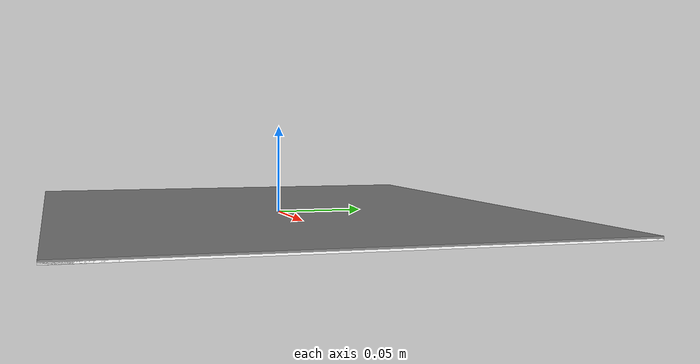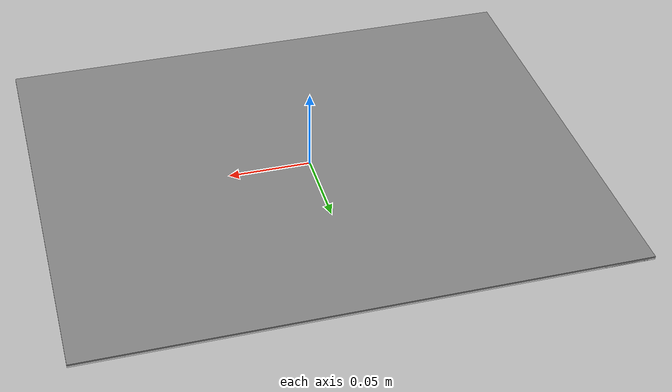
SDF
<?xml version='1.0'?>
<sdf version='1.5'>
    <model name='calibration'>

        <static>1</static>
        <allow_auto_disable>1</allow_auto_disable>

        <link name="base_link">
            <!-- Back of the landmark not to mess with small Z offset -->
            <visual name="back">
                <pose>0 0 0.0015 0 0 0</pose>
                <geometry>
                    <box>
                        <size>0.33 0.27 0.001</size>
                    </box>
                </geometry>
                <material>
                    <ambient>0.5 0.5 0.5 1</ambient>
                    <specular>0.5 0.5 0.5 1</specular>
                    <diffuse>0.5 0.5 0.5 1</diffuse>
                </material>
            </visual>
            <inertial>
                <mass>0.1</mass>
            </inertial>
            <!-- Borders -->
            <visual name="border0">
                <pose>0.15 0 0.0005 0 0 0</pose>
                <geometry>
                    <box>
                        <size>0.03 0.27 0.001</size>
                    </box>
                </geometry>
                <material>
                    <ambient>1 1 1 1</ambient>
                    <specular>1 1 1 1</specular>
                    <diffuse>1 1 1 1</diffuse>
                </material>
            </visual>
            <visual name="border1">
                <pose>-0.15 0 0.0005 0 0 0</pose>
                <geometry>
                    <box>
                        <size>0.03 0.27 0.001</size>
                    </box>
                </geometry>
                <material>
                    <ambient>1 1 1 1</ambient>
                    <specular>1 1 1 1</specular>
                    <diffuse>1 1 1 1</diffuse>
                </material>
            </visual>
            <visual name="border2">
                <pose>0 0.12 0.0005 0 0 0</pose>
                <geometry>
                    <box>
                        <size>0.33 0.03 0.001</size>
                    </box>
                </geometry>
                <material>
                    <ambient>1 1 1 1</ambient>
                    <specular>1 1 1 1</specular>
                    <diffuse>1 1 1 1</diffuse>
                </material>
            </visual>
            <visual name="border3">
                <pose>0 -0.12 0.0005 0 0 0</pose>
                <geometry>
                    <box>
                        <size>0.33 0.03 0.001</size>
                    </box>
                </geometry>
                <material>
                    <ambient>1 1 1 1</ambient>
                    <specular>1 1 1 1</specular>
                    <diffuse>1 1 1 1</diffuse>
                </material>
            </visual>
            <visual name="86">
                <pose>0.12 0.09 0.0005 0 0 0</pose>
                <geometry>
                    <box>
                        <size>0.03 0.03 0.001</size>
                    </box>
                </geometry>
                <material>
                    <ambient>1 1 1 1</ambient>
                    <specular>1 1 1 1</specular>
                    <diffuse>1 1 1 1</diffuse>
                </material>
            </visual>
            <visual name="85">
                <pose>0.12 0.06 0.0005 0 0 0</pose>
                <geometry>
                    <box>
                        <size>0.03 0.03 0.001</size>
                    </box>
                </geometry>
                <material>
                    <ambient>0 0 0 1</ambient>
                    <specular>0 0 0 1</specular>
                    <diffuse>0 0 0 1</diffuse>
                </material>
            </visual>
            <visual name="84">
                <pose>0.12 0.03 0.0005 0 0 0</pose>
                <geometry>
                    <box>
                        <size>0.03 0.03 0.001</size>
                    </box>
                </geometry>
                <material>
                    <ambient>1 1 1 1</ambient>
                    <specular>1 1 1 1</specular>
                    <diffuse>1 1 1 1</diffuse>
                </material>
            </visual>
            <visual name="83">
                <pose>0.12 0.0 0.0005 0 0 0</pose>
                <geometry>
                    <box>
                        <size>0.03 0.03 0.001</size>
                    </box>
                </geometry>
                <material>
                    <ambient>0 0 0 1</ambient>
                    <specular>0 0 0 1</specular>
                    <diffuse>0 0 0 1</diffuse>
                </material>
            </visual>
            <visual name="82">
                <pose>0.12 -0.03 0.0005 0 0 0</pose>
                <geometry>
                    <box>
                        <size>0.03 0.03 0.001</size>
                    </box>
                </geometry>
                <material>
                    <ambient>1 1 1 1</ambient>
                    <specular>1 1 1 1</specular>
                    <diffuse>1 1 1 1</diffuse>
                </material>
            </visual>
            <visual name="81">
                <pose>0.12 -0.06 0.0005 0 0 0</pose>
                <geometry>
                    <box>
                        <size>0.03 0.03 0.001</size>
                    </box>
                </geometry>
                <material>
                    <ambient>0 0 0 1</ambient>
                    <specular>0 0 0 1</specular>
                    <diffuse>0 0 0 1</diffuse>
                </material>
            </visual>
            <visual name="80">
                <pose>0.12 -0.09 0.0005 0 0 0</pose>
                <geometry>
                    <box>
                        <size>0.03 0.03 0.001</size>
                    </box>
                </geometry>
                <material>
                    <ambient>1 1 1 1</ambient>
                    <specular>1 1 1 1</specular>
                    <diffuse>1 1 1 1</diffuse>
                </material>
            </visual>
            <visual name="76">
                <pose>0.09 0.09 0.0005 0 0 0</pose>
                <geometry>
                    <box>
                        <size>0.03 0.03 0.001</size>
                    </box>
                </geometry>
                <material>
                    <ambient>0 0 0 1</ambient>
                    <specular>0 0 0 1</specular>
                    <diffuse>0 0 0 1</diffuse>
                </material>
            </visual>
            <visual name="75">
                <pose>0.09 0.06 0.0005 0 0 0</pose>
                <geometry>
                    <box>
                        <size>0.03 0.03 0.001</size>
                    </box>
                </geometry>
                <material>
                    <ambient>1 1 1 1</ambient>
                    <specular>1 1 1 1</specular>
                    <diffuse>1 1 1 1</diffuse>
                </material>
            </visual>
            <visual name="74">
                <pose>0.09 0.03 0.0005 0 0 0</pose>
                <geometry>
                    <box>
                        <size>0.03 0.03 0.001</size>
                    </box>
                </geometry>
                <material>
                    <ambient>0 0 0 1</ambient>
                    <specular>0 0 0 1</specular>
                    <diffuse>0 0 0 1</diffuse>
                </material>
            </visual>
            <visual name="73">
                <pose>0.09 0.0 0.0005 0 0 0</pose>
                <geometry>
                    <box>
                        <size>0.03 0.03 0.001</size>
                    </box>
                </geometry>
                <material>
                    <ambient>1 1 1 1</ambient>
                    <specular>1 1 1 1</specular>
                    <diffuse>1 1 1 1</diffuse>
                </material>
            </visual>
            <visual name="72">
                <pose>0.09 -0.03 0.0005 0 0 0</pose>
                <geometry>
                    <box>
                        <size>0.03 0.03 0.001</size>
                    </box>
                </geometry>
                <material>
                    <ambient>0 0 0 1</ambient>
                    <specular>0 0 0 1</specular>
                    <diffuse>0 0 0 1</diffuse>
                </material>
            </visual>
            <visual name="71">
                <pose>0.09 -0.06 0.0005 0 0 0</pose>
                <geometry>
                    <box>
                        <size>0.03 0.03 0.001</size>
                    </box>
                </geometry>
                <material>
                    <ambient>1 1 1 1</ambient>
                    <specular>1 1 1 1</specular>
                    <diffuse>1 1 1 1</diffuse>
                </material>
            </visual>
            <visual name="70">
                <pose>0.09 -0.09 0.0005 0 0 0</pose>
                <geometry>
                    <box>
                        <size>0.03 0.03 0.001</size>
                    </box>
                </geometry>
                <material>
                    <ambient>0 0 0 1</ambient>
                    <specular>0 0 0 1</specular>
                    <diffuse>0 0 0 1</diffuse>
                </material>
            </visual>
            <visual name="66">
                <pose>0.06 0.09 0.0005 0 0 0</pose>
                <geometry>
                    <box>
                        <size>0.03 0.03 0.001</size>
                    </box>
                </geometry>
                <material>
                    <ambient>1 1 1 1</ambient>
                    <specular>1 1 1 1</specular>
                    <diffuse>1 1 1 1</diffuse>
                </material>
            </visual>
            <visual name="65">
                <pose>0.06 0.06 0.0005 0 0 0</pose>
                <geometry>
                    <box>
                        <size>0.03 0.03 0.001</size>
                    </box>
                </geometry>
                <material>
                    <ambient>0 0 0 1</ambient>
                    <specular>0 0 0 1</specular>
                    <diffuse>0 0 0 1</diffuse>
                </material>
            </visual>
            <visual name="64">
                <pose>0.06 0.03 0.0005 0 0 0</pose>
                <geometry>
                    <box>
                        <size>0.03 0.03 0.001</size>
                    </box>
                </geometry>
                <material>
                    <ambient>1 1 1 1</ambient>
                    <specular>1 1 1 1</specular>
                    <diffuse>1 1 1 1</diffuse>
                </material>
            </visual>
            <visual name="63">
                <pose>0.06 0.0 0.0005 0 0 0</pose>
                <geometry>
                    <box>
                        <size>0.03 0.03 0.001</size>
                    </box>
                </geometry>
                <material>
                    <ambient>0 0 0 1</ambient>
                    <specular>0 0 0 1</specular>
                    <diffuse>0 0 0 1</diffuse>
                </material>
            </visual>
            <visual name="62">
                <pose>0.06 -0.03 0.0005 0 0 0</pose>
                <geometry>
                    <box>
                        <size>0.03 0.03 0.001</size>
                    </box>
                </geometry>
                <material>
                    <ambient>1 1 1 1</ambient>
                    <specular>1 1 1 1</specular>
                    <diffuse>1 1 1 1</diffuse>
                </material>
            </visual>
            <visual name="61">
                <pose>0.06 -0.06 0.0005 0 0 0</pose>
                <geometry>
                    <box>
                        <size>0.03 0.03 0.001</size>
                    </box>
                </geometry>
                <material>
                    <ambient>0 0 0 1</ambient>
                    <specular>0 0 0 1</specular>
                    <diffuse>0 0 0 1</diffuse>
                </material>
            </visual>
            <visual name="60">
                <pose>0.06 -0.09 0.0005 0 0 0</pose>
                <geometry>
                    <box>
                        <size>0.03 0.03 0.001</size>
                    </box>
                </geometry>
                <material>
                    <ambient>1 1 1 1</ambient>
                    <specular>1 1 1 1</specular>
                    <diffuse>1 1 1 1</diffuse>
                </material>
            </visual>
            <visual name="56">
                <pose>0.03 0.09 0.0005 0 0 0</pose>
                <geometry>
                    <box>
                        <size>0.03 0.03 0.001</size>
                    </box>
                </geometry>
                <material>
                    <ambient>0 0 0 1</ambient>
                    <specular>0 0 0 1</specular>
                    <diffuse>0 0 0 1</diffuse>
                </material>
            </visual>
            <visual name="55">
                <pose>0.03 0.06 0.0005 0 0 0</pose>
                <geometry>
                    <box>
                        <size>0.03 0.03 0.001</size>
                    </box>
                </geometry>
                <material>
                    <ambient>1 1 1 1</ambient>
                    <specular>1 1 1 1</specular>
                    <diffuse>1 1 1 1</diffuse>
                </material>
            </visual>
            <visual name="54">
                <pose>0.03 0.03 0.0005 0 0 0</pose>
                <geometry>
                    <box>
                        <size>0.03 0.03 0.001</size>
                    </box>
                </geometry>
                <material>
                    <ambient>0 0 0 1</ambient>
                    <specular>0 0 0 1</specular>
                    <diffuse>0 0 0 1</diffuse>
                </material>
            </visual>
            <visual name="53">
                <pose>0.03 0.0 0.0005 0 0 0</pose>
                <geometry>
                    <box>
                        <size>0.03 0.03 0.001</size>
                    </box>
                </geometry>
                <material>
                    <ambient>1 1 1 1</ambient>
                    <specular>1 1 1 1</specular>
                    <diffuse>1 1 1 1</diffuse>
                </material>
            </visual>
            <visual name="52">
                <pose>0.03 -0.03 0.0005 0 0 0</pose>
                <geometry>
                    <box>
                        <size>0.03 0.03 0.001</size>
                    </box>
                </geometry>
                <material>
                    <ambient>0 0 0 1</ambient>
                    <specular>0 0 0 1</specular>
                    <diffuse>0 0 0 1</diffuse>
                </material>
            </visual>
            <visual name="51">
                <pose>0.03 -0.06 0.0005 0 0 0</pose>
                <geometry>
                    <box>
                        <size>0.03 0.03 0.001</size>
                    </box>
                </geometry>
                <material>
                    <ambient>1 1 1 1</ambient>
                    <specular>1 1 1 1</specular>
                    <diffuse>1 1 1 1</diffuse>
                </material>
            </visual>
            <visual name="50">
                <pose>0.03 -0.09 0.0005 0 0 0</pose>
                <geometry>
                    <box>
                        <size>0.03 0.03 0.001</size>
                    </box>
                </geometry>
                <material>
                    <ambient>0 0 0 1</ambient>
                    <specular>0 0 0 1</specular>
                    <diffuse>0 0 0 1</diffuse>
                </material>
            </visual>
            <visual name="46">
                <pose>0.0 0.09 0.0005 0 0 0</pose>
                <geometry>
                    <box>
                        <size>0.03 0.03 0.001</size>
                    </box>
                </geometry>
                <material>
                    <ambient>1 1 1 1</ambient>
                    <specular>1 1 1 1</specular>
                    <diffuse>1 1 1 1</diffuse>
                </material>
            </visual>
            <visual name="45">
                <pose>0.0 0.06 0.0005 0 0 0</pose>
                <geometry>
                    <box>
                        <size>0.03 0.03 0.001</size>
                    </box>
                </geometry>
                <material>
                    <ambient>0 0 0 1</ambient>
                    <specular>0 0 0 1</specular>
                    <diffuse>0 0 0 1</diffuse>
                </material>
            </visual>
            <visual name="44">
                <pose>0.0 0.03 0.0005 0 0 0</pose>
                <geometry>
                    <box>
                        <size>0.03 0.03 0.001</size>
                    </box>
                </geometry>
                <material>
                    <ambient>1 1 1 1</ambient>
                    <specular>1 1 1 1</specular>
                    <diffuse>1 1 1 1</diffuse>
                </material>
            </visual>
            <visual name="43">
                <pose>0.0 0.0 0.0005 0 0 0</pose>
                <geometry>
                    <box>
                        <size>0.03 0.03 0.001</size>
                    </box>
                </geometry>
                <material>
                    <ambient>0 0 0 1</ambient>
                    <specular>0 0 0 1</specular>
                    <diffuse>0 0 0 1</diffuse>
                </material>
            </visual>
            <visual name="42">
                <pose>0.0 -0.03 0.0005 0 0 0</pose>
                <geometry>
                    <box>
                        <size>0.03 0.03 0.001</size>
                    </box>
                </geometry>
                <material>
                    <ambient>1 1 1 1</ambient>
                    <specular>1 1 1 1</specular>
                    <diffuse>1 1 1 1</diffuse>
                </material>
            </visual>
            <visual name="41">
                <pose>0.0 -0.06 0.0005 0 0 0</pose>
                <geometry>
                    <box>
                        <size>0.03 0.03 0.001</size>
                    </box>
                </geometry>
                <material>
                    <ambient>0 0 0 1</ambient>
                    <specular>0 0 0 1</specular>
                    <diffuse>0 0 0 1</diffuse>
                </material>
            </visual>
            <visual name="40">
                <pose>0.0 -0.09 0.0005 0 0 0</pose>
                <geometry>
                    <box>
                        <size>0.03 0.03 0.001</size>
                    </box>
                </geometry>
                <material>
                    <ambient>1 1 1 1</ambient>
                    <specular>1 1 1 1</specular>
                    <diffuse>1 1 1 1</diffuse>
                </material>
            </visual>
            <visual name="36">
                <pose>-0.03 0.09 0.0005 0 0 0</pose>
                <geometry>
                    <box>
                        <size>0.03 0.03 0.001</size>
                    </box>
                </geometry>
                <material>
                    <ambient>0 0 0 1</ambient>
                    <specular>0 0 0 1</specular>
                    <diffuse>0 0 0 1</diffuse>
                </material>
            </visual>
            <visual name="35">
                <pose>-0.03 0.06 0.0005 0 0 0</pose>
                <geometry>
                    <box>
                        <size>0.03 0.03 0.001</size>
                    </box>
                </geometry>
                <material>
                    <ambient>1 1 1 1</ambient>
                    <specular>1 1 1 1</specular>
                    <diffuse>1 1 1 1</diffuse>
                </material>
            </visual>
            <visual name="34">
                <pose>-0.03 0.03 0.0005 0 0 0</pose>
                <geometry>
                    <box>
                        <size>0.03 0.03 0.001</size>
                    </box>
                </geometry>
                <material>
                    <ambient>0 0 0 1</ambient>
                    <specular>0 0 0 1</specular>
                    <diffuse>0 0 0 1</diffuse>
                </material>
            </visual>
            <visual name="33">
                <pose>-0.03 0.0 0.0005 0 0 0</pose>
                <geometry>
                    <box>
                        <size>0.03 0.03 0.001</size>
                    </box>
                </geometry>
                <material>
                    <ambient>1 1 1 1</ambient>
                    <specular>1 1 1 1</specular>
                    <diffuse>1 1 1 1</diffuse>
                </material>
            </visual>
            <visual name="32">
                <pose>-0.03 -0.03 0.0005 0 0 0</pose>
                <geometry>
                    <box>
                        <size>0.03 0.03 0.001</size>
                    </box>
                </geometry>
                <material>
                    <ambient>0 0 0 1</ambient>
                    <specular>0 0 0 1</specular>
                    <diffuse>0 0 0 1</diffuse>
                </material>
            </visual>
            <visual name="31">
                <pose>-0.03 -0.06 0.0005 0 0 0</pose>
                <geometry>
                    <box>
                        <size>0.03 0.03 0.001</size>
                    </box>
                </geometry>
                <material>
                    <ambient>1 1 1 1</ambient>
                    <specular>1 1 1 1</specular>
                    <diffuse>1 1 1 1</diffuse>
                </material>
            </visual>
            <visual name="30">
                <pose>-0.03 -0.09 0.0005 0 0 0</pose>
                <geometry>
                    <box>
                        <size>0.03 0.03 0.001</size>
                    </box>
                </geometry>
                <material>
                    <ambient>0 0 0 1</ambient>
                    <specular>0 0 0 1</specular>
                    <diffuse>0 0 0 1</diffuse>
                </material>
            </visual>
            <visual name="26">
                <pose>-0.06 0.09 0.0005 0 0 0</pose>
                <geometry>
                    <box>
                        <size>0.03 0.03 0.001</size>
                    </box>
                </geometry>
                <material>
                    <ambient>1 1 1 1</ambient>
                    <specular>1 1 1 1</specular>
                    <diffuse>1 1 1 1</diffuse>
                </material>
            </visual>
            <visual name="25">
                <pose>-0.06 0.06 0.0005 0 0 0</pose>
                <geometry>
                    <box>
                        <size>0.03 0.03 0.001</size>
                    </box>
                </geometry>
                <material>
                    <ambient>0 0 0 1</ambient>
                    <specular>0 0 0 1</specular>
                    <diffuse>0 0 0 1</diffuse>
                </material>
            </visual>
            <visual name="24">
                <pose>-0.06 0.03 0.0005 0 0 0</pose>
                <geometry>
                    <box>
                        <size>0.03 0.03 0.001</size>
                    </box>
                </geometry>
                <material>
                    <ambient>1 1 1 1</ambient>
                    <specular>1 1 1 1</specular>
                    <diffuse>1 1 1 1</diffuse>
                </material>
            </visual>
            <visual name="23">
                <pose>-0.06 0.0 0.0005 0 0 0</pose>
                <geometry>
                    <box>
                        <size>0.03 0.03 0.001</size>
                    </box>
                </geometry>
                <material>
                    <ambient>0 0 0 1</ambient>
                    <specular>0 0 0 1</specular>
                    <diffuse>0 0 0 1</diffuse>
                </material>
            </visual>
            <visual name="22">
                <pose>-0.06 -0.03 0.0005 0 0 0</pose>
                <geometry>
                    <box>
                        <size>0.03 0.03 0.001</size>
                    </box>
                </geometry>
                <material>
                    <ambient>1 1 1 1</ambient>
                    <specular>1 1 1 1</specular>
                    <diffuse>1 1 1 1</diffuse>
                </material>
            </visual>
            <visual name="21">
                <pose>-0.06 -0.06 0.0005 0 0 0</pose>
                <geometry>
                    <box>
                        <size>0.03 0.03 0.001</size>
                    </box>
                </geometry>
                <material>
                    <ambient>0 0 0 1</ambient>
                    <specular>0 0 0 1</specular>
                    <diffuse>0 0 0 1</diffuse>
                </material>
            </visual>
            <visual name="20">
                <pose>-0.06 -0.09 0.0005 0 0 0</pose>
                <geometry>
                    <box>
                        <size>0.03 0.03 0.001</size>
                    </box>
                </geometry>
                <material>
                    <ambient>1 1 1 1</ambient>
                    <specular>1 1 1 1</specular>
                    <diffuse>1 1 1 1</diffuse>
                </material>
            </visual>
            <visual name="16">
                <pose>-0.09 0.09 0.0005 0 0 0</pose>
                <geometry>
                    <box>
                        <size>0.03 0.03 0.001</size>
                    </box>
                </geometry>
                <material>
                    <ambient>0 0 0 1</ambient>
                    <specular>0 0 0 1</specular>
                    <diffuse>0 0 0 1</diffuse>
                </material>
            </visual>
            <visual name="15">
                <pose>-0.09 0.06 0.0005 0 0 0</pose>
                <geometry>
                    <box>
                        <size>0.03 0.03 0.001</size>
                    </box>
                </geometry>
                <material>
                    <ambient>1 1 1 1</ambient>
                    <specular>1 1 1 1</specular>
                    <diffuse>1 1 1 1</diffuse>
                </material>
            </visual>
            <visual name="14">
                <pose>-0.09 0.03 0.0005 0 0 0</pose>
                <geometry>
                    <box>
                        <size>0.03 0.03 0.001</size>
                    </box>
                </geometry>
                <material>
                    <ambient>0 0 0 1</ambient>
                    <specular>0 0 0 1</specular>
                    <diffuse>0 0 0 1</diffuse>
                </material>
            </visual>
            <visual name="13">
                <pose>-0.09 0.0 0.0005 0 0 0</pose>
                <geometry>
                    <box>
                        <size>0.03 0.03 0.001</size>
                    </box>
                </geometry>
                <material>
                    <ambient>1 1 1 1</ambient>
                    <specular>1 1 1 1</specular>
                    <diffuse>1 1 1 1</diffuse>
                </material>
            </visual>
            <visual name="12">
                <pose>-0.09 -0.03 0.0005 0 0 0</pose>
                <geometry>
                    <box>
                        <size>0.03 0.03 0.001</size>
                    </box>
                </geometry>
                <material>
                    <ambient>0 0 0 1</ambient>
                    <specular>0 0 0 1</specular>
                    <diffuse>0 0 0 1</diffuse>
                </material>
            </visual>
            <visual name="11">
                <pose>-0.09 -0.06 0.0005 0 0 0</pose>
                <geometry>
                    <box>
                        <size>0.03 0.03 0.001</size>
                    </box>
                </geometry>
                <material>
                    <ambient>1 1 1 1</ambient>
                    <specular>1 1 1 1</specular>
                    <diffuse>1 1 1 1</diffuse>
                </material>
            </visual>
            <visual name="10">
                <pose>-0.09 -0.09 0.0005 0 0 0</pose>
                <geometry>
                    <box>
                        <size>0.03 0.03 0.001</size>
                    </box>
                </geometry>
                <material>
                    <ambient>0 0 0 1</ambient>
                    <specular>0 0 0 1</specular>
                    <diffuse>0 0 0 1</diffuse>
                </material>
            </visual>
            <visual name="06">
                <pose>-0.12 0.09 0.0005 0 0 0</pose>
                <geometry>
                    <box>
                        <size>0.03 0.03 0.001</size>
                    </box>
                </geometry>
                <material>
                    <ambient>1 1 1 1</ambient>
                    <specular>1 1 1 1</specular>
                    <diffuse>1 1 1 1</diffuse>
                </material>
            </visual>
            <visual name="05">
                <pose>-0.12 0.06 0.0005 0 0 0</pose>
                <geometry>
                    <box>
                        <size>0.03 0.03 0.001</size>
                    </box>
                </geometry>
                <material>
                    <ambient>0 0 0 1</ambient>
                    <specular>0 0 0 1</specular>
                    <diffuse>0 0 0 1</diffuse>
                </material>
            </visual>
            <visual name="04">
                <pose>-0.12 0.03 0.0005 0 0 0</pose>
                <geometry>
                    <box>
                        <size>0.03 0.03 0.001</size>
                    </box>
                </geometry>
                <material>
                    <ambient>1 1 1 1</ambient>
                    <specular>1 1 1 1</specular>
                    <diffuse>1 1 1 1</diffuse>
                </material>
            </visual>
            <visual name="03">
                <pose>-0.12 0.0 0.0005 0 0 0</pose>
                <geometry>
                    <box>
                        <size>0.03 0.03 0.001</size>
                    </box>
                </geometry>
                <material>
                    <ambient>0 0 0 1</ambient>
                    <specular>0 0 0 1</specular>
                    <diffuse>0 0 0 1</diffuse>
                </material>
            </visual>
            <visual name="02">
                <pose>-0.12 -0.03 0.0005 0 0 0</pose>
                <geometry>
                    <box>
                        <size>0.03 0.03 0.001</size>
                    </box>
                </geometry>
                <material>
                    <ambient>1 1 1 1</ambient>
                    <specular>1 1 1 1</specular>
                    <diffuse>1 1 1 1</diffuse>
                </material>
            </visual>
            <visual name="01">
                <pose>-0.12 -0.06 0.0005 0 0 0</pose>
                <geometry>
                    <box>
                        <size>0.03 0.03 0.001</size>
                    </box>
                </geometry>
                <material>
                    <ambient>0 0 0 1</ambient>
                    <specular>0 0 0 1</specular>
                    <diffuse>0 0 0 1</diffuse>
                </material>
            </visual>
            <visual name="00">
                <pose>-0.12 -0.09 0.0005 0 0 0</pose>
                <geometry>
                    <box>
                        <size>0.03 0.03 0.001</size>
                    </box>
                </geometry>
                <material>
                    <ambient>1 1 1 1</ambient>
                    <specular>1 1 1 1</specular>
                    <diffuse>1 1 1 1</diffuse>
                </material>
            </visual>
        </link>

    </model>
</sdf>
